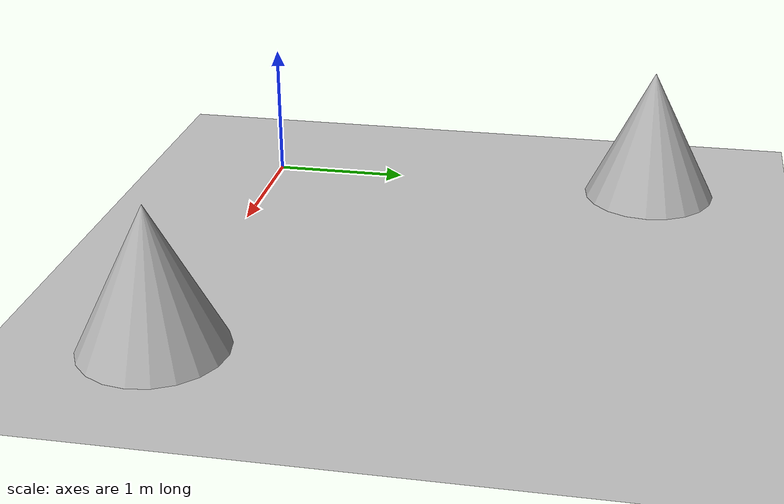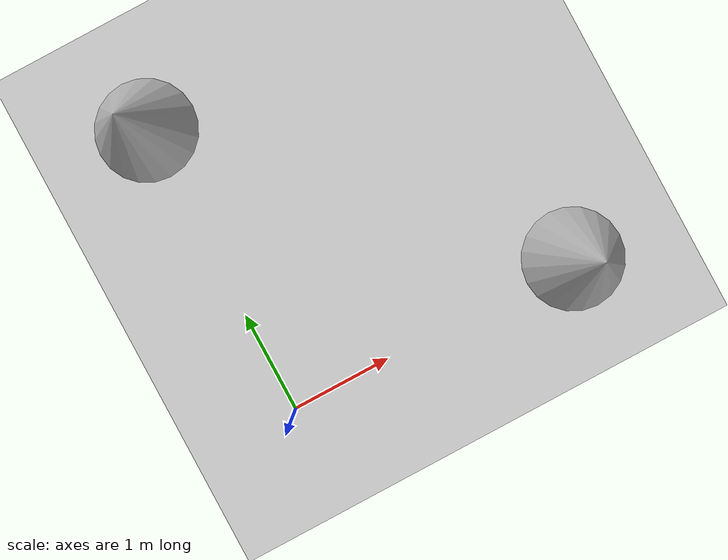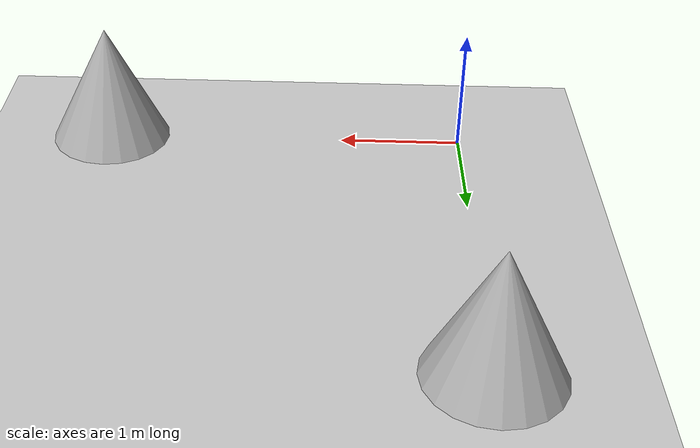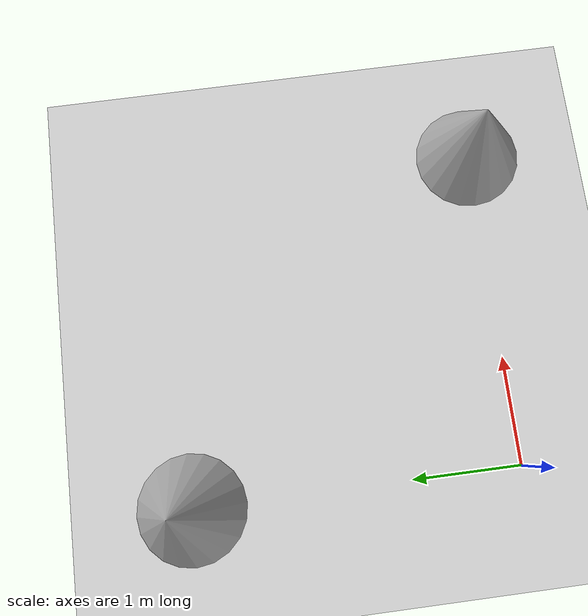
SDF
<?xml version="1.0" ?>

<sdf version="1.6">
  <world name="default">

    <!-- Physics -->
    <physics name="1ms" type="ignored">
      <max_step_size>0.001</max_step_size>
      <real_time_factor>1.0</real_time_factor>
    </physics>

    <!-- Plugins -->
    <plugin filename="gz-sim-physics-system" name="gz::sim::systems::Physics"/>
    <plugin filename="gz-sim-user-commands-system" name="gz::sim::systems::UserCommands"/>
    <plugin filename="gz-sim-scene-broadcaster-system" name="gz::sim::systems::SceneBroadcaster"/>
    <plugin filename="gz-sim-sensors-system" name="gz::sim::systems::Sensors">
      <render_engine>ogre2</render_engine>
    </plugin>
    <plugin filename="gz-sim-imu-system" name="gz::sim::systems::Imu"/>
    <plugin filename="gz-sim-contact-system" name="gz::sim::systems::Contact"/>

    <!-- To add realistic gravity, do: 0.0 0.0 -9.8, otherwise do 0.0 0.0 0.0 -->
    <gravity>0.0 0.0 -9.8</gravity>

     <light type="directional" name="sun">
      <cast_shadows>true</cast_shadows>
      <pose>0 0 10 0 0 0</pose>
      <diffuse>1 1 1 1</diffuse>
      <specular>0.5 0.5 0.5 1</specular>
      <attenuation>
        <range>1000</range>
        <constant>0.9</constant>
        <linear>0.01</linear>
        <quadratic>0.001</quadratic>
      </attenuation>
      <direction>-0.5 0.1 -0.9</direction>
    </light>

    <!-- Ground Plane -->
    <model name="ground_plane">
      <static>true</static>
      <link name="link">
        <collision name="collision">
          <geometry>
            <plane>
              <normal>0 0 1</normal>
              <size>100 100</size>
            </plane>
          </geometry>
        </collision>
        <visual name="visual">
          <geometry>
            <plane>
              <normal>0 0 1</normal>
              <size>100 100</size>
            </plane>
          </geometry>
          <material>
            <ambient>0.8 0.8 0.8 1</ambient>
            <diffuse>0.8 0.8 0.8 1</diffuse>
            <specular>0.8 0.8 0.8 1</specular>
          </material>
        </visual>
      </link>
    </model>

    <model name='cone_1'>
      <pose>3.0 0.0 0.5 0 0 0</pose>
      <link name='cone_link'>
        <inertial>
          <inertia>
            <ixx>0.074999999999999997</ixx>
            <ixy>0</ixy>
            <ixz>0</ixz>
            <iyy>0.074999999999999997</iyy>
            <iyz>0</iyz>
            <izz>0.074999999999999997</izz>
          </inertia>
          <mass>1</mass>
          <pose>0 0 0 0 0 0</pose>
        </inertial>
        <collision name='cone_collision'>
          <geometry>
            <cone>
              <radius>0.5</radius>
              <length>1</length>
            </cone>
          </geometry>
          <surface>
            <friction>
              <ode/>
            </friction>
            <bounce/>
            <contact/>
          </surface>
        </collision>
        <visual name='cone_visual'>
          <geometry>
            <cone>
              <radius>0.5</radius>
              <length>1</length>
            </cone>
          </geometry>
          <material>
            <ambient>0.300000012 0.300000012 0.300000012 1</ambient>
            <diffuse>0.699999988 0.699999988 0.699999988 1</diffuse>
            <specular>1 1 1 1</specular>
          </material>
        </visual>
        <pose>0 0 0 0 0 0</pose>
        <enable_wind>false</enable_wind>
      </link>
      <static>false</static>
      <self_collide>false</self_collide>
    </model>

    <model name='cone_2'>
      <pose>0.0 3.0 0.5 0 0 0</pose>
      <link name='cone_link'>
        <inertial>
          <inertia>
            <ixx>0.074999999999999997</ixx>
            <ixy>0</ixy>
            <ixz>0</ixz>
            <iyy>0.074999999999999997</iyy>
            <iyz>0</iyz>
            <izz>0.074999999999999997</izz>
          </inertia>
          <mass>1</mass>
          <pose>0 0 0 0 0 0</pose>
        </inertial>
        <collision name='cone_collision'>
          <geometry>
            <cone>
              <radius>0.5</radius>
              <length>1</length>
            </cone>
          </geometry>
          <surface>
            <friction>
              <ode/>
            </friction>
            <bounce/>
            <contact/>
          </surface>
        </collision>
        <visual name='cone_visual'>
          <geometry>
            <cone>
              <radius>0.5</radius>
              <length>1</length>
            </cone>
          </geometry>
          <material>
            <ambient>0.300000012 0.300000012 0.300000012 1</ambient>
            <diffuse>0.699999988 0.699999988 0.699999988 1</diffuse>
            <specular>1 1 1 1</specular>
          </material>
        </visual>
        <pose>0 0 0 0 0 0</pose>
        <enable_wind>false</enable_wind>
      </link>
      <static>false</static>
      <self_collide>false</self_collide>
    </model>

  </world>
</sdf>
